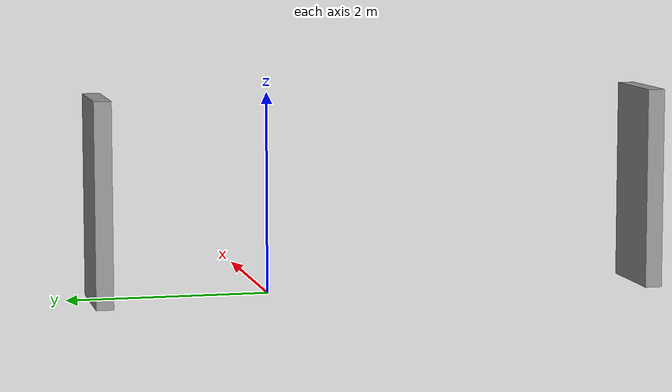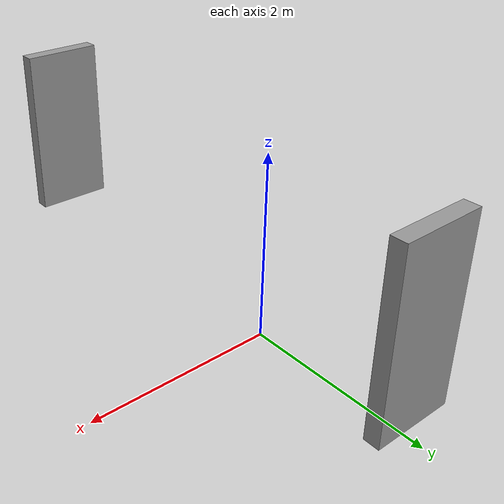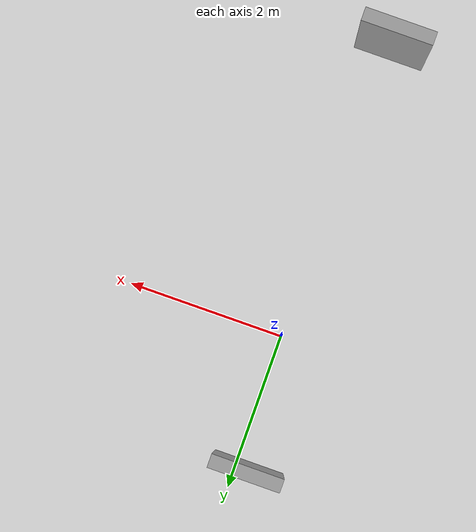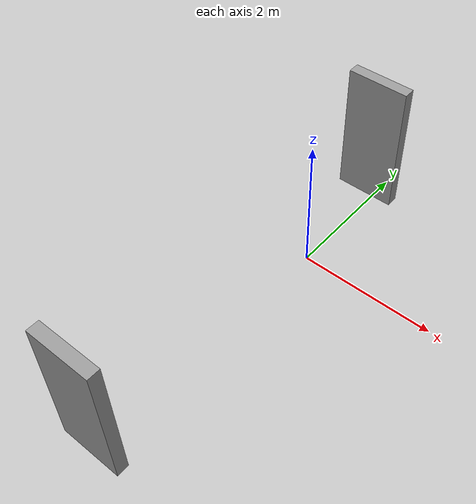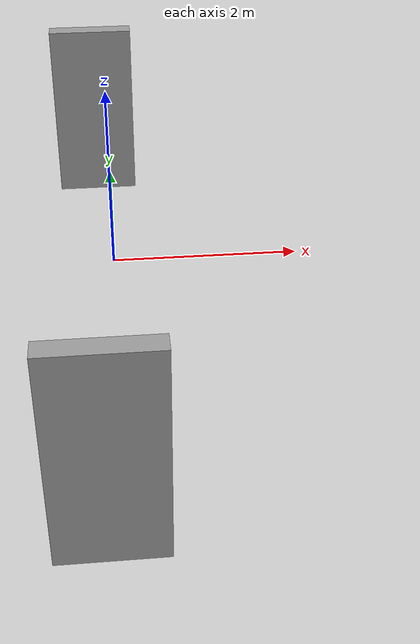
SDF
<?xml version='1.0'?>
<sdf version='1.7'>
  <model name='Doors'>
    <pose>0 0 0 0 -0 0</pose>
    <link name='Door_5'>
      <collision name='Door_5_Collision'>
        <geometry>
          <box>
            <size>0.9 0.17 2</size>
          </box>
        </geometry>
        <pose>0 0 1 0 -0 0</pose>
      </collision>
      <visual name='Door_5_Visual'>
        <pose>0 0 1 0 -0 0</pose>
        <geometry>
          <box>
            <size>0.9 0.17 2</size>
          </box>
        </geometry>
        <material>
          <script>
            <uri>file://media/materials/scripts/gazebo.material</uri>
            <name>Gazebo/Grey</name>
          </script>
        </material>
      </visual>
      <pose>-0.099512 -3.85647 0 0 -0 0</pose>
    </link>
    <link name='Door_6'>
      <collision name='Door_6_Collision'>
        <geometry>
          <box>
            <size>0.9 0.17 2</size>
          </box>
        </geometry>
        <pose>0 0 1 0 -0 0</pose>
      </collision>
      <visual name='Door_6_Visual'>
        <pose>0 0 1 0 -0 0</pose>
        <geometry>
          <box>
            <size>0.9 0.17 2</size>
          </box>
        </geometry>
        <material>
          <script>
            <uri>file://media/materials/scripts/gazebo.material</uri>
            <name>Gazebo/Grey</name>
          </script>
        </material>
      </visual>
      <pose>-0.148165 1.69526 0 0 -0 0</pose>
    </link>
    <static>1</static>
  </model>
</sdf>
